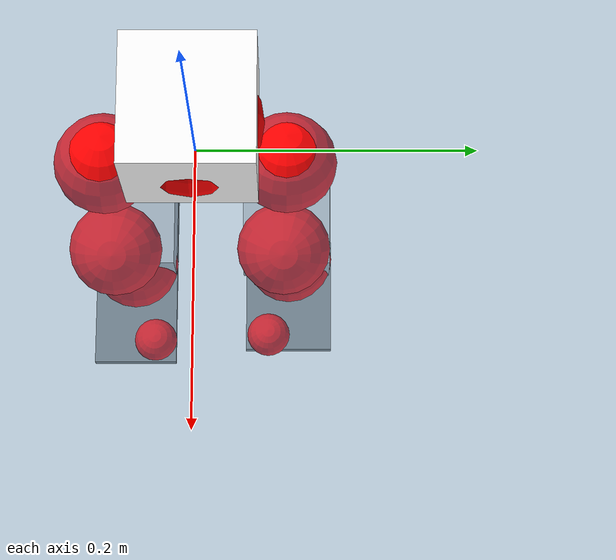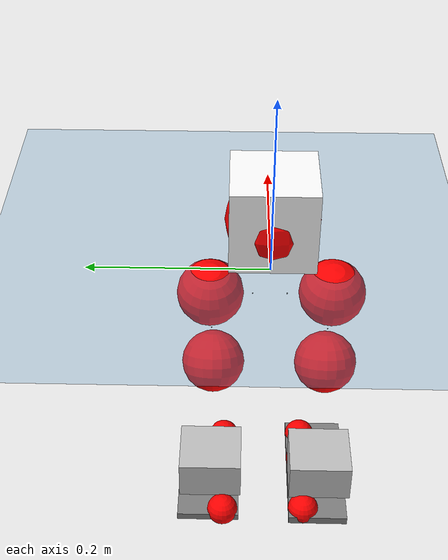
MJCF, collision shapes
<mujoco model="pi_12dof_release_v1">
  <compiler angle="radian" assetdir="assets" balanceinertia="true" inertiafromgeom="false"/>

  <option timestep="0.005" density="1.2" viscosity="2e-05"/>

  <size nkey="1"/>

  <visual>
    <quality shadowsize="8192"/>
    <map shadowclip="0.5"/>
  </visual>

  <default>
    <default class="/">
      <joint armature="0.01" damping="0.01" frictionloss="0.01"/>
      <geom contype="0" conaffinity="0" group="1" solref="-1000 -80"/>
      <site size="0.01 0.005 0.005" group="5"/>
      <general forcelimited="true" biastype="affine" gainprm="20" biasprm="0 -20 -0.5"/>
      <default class="foot">
        <geom size="0.0845 0.036 0.005" type="box" condim="6" group="4" priority="1" friction="0.9 0.2 0.2" solimp="0.015 1 0.005"/>
      </default>
      <default class="reward_collision_sphere">
        <geom group="5" rgba="1 0 0 1"/>
      </default>
    </default>
  </default>

  <asset>
    <texture type="skybox" colorspace="auto" name="//unnamed_texture_0" builtin="gradient" rgb1="0.95 0.95 0.95" rgb2="0.95 0.95 0.95" width="100" height="600"/>
    <texture type="2d" colorspace="auto" name="texplane" builtin="checker" rgb1="0.345 0.575 0.748" rgb2="0.345 0.575 0.748" markrgb="1 1 1" width="512" height="512"/>
    <material name="MatPlane" class="/" texture="texplane" texuniform="true" texrepeat="2 2" specular="0.9"/>
    <mesh name="baselink_1" class="/" file="baselink_1.STL"/>
    <mesh name="r_hip_pitch_link" class="/" file="r_hip_pitch_link.STL"/>
    <mesh name="r_hip_roll_link" class="/" file="r_hip_roll_link.STL"/>
    <mesh name="r_thigh_link" class="/" file="r_thigh_link.STL"/>
    <mesh name="r_calf_link" class="/" file="r_calf_link.STL"/>
    <mesh name="r_ankle_pitch_link" class="/" file="r_ankle_pitch_link.STL"/>
    <mesh name="r_ankle_roll_link" class="/" file="r_ankle_roll_link.STL"/>
    <mesh name="l_hip_pitch_link" class="/" file="l_hip_pitch_link.STL"/>
    <mesh name="l_hip_roll_link" class="/" file="l_hip_roll_link.STL"/>
    <mesh name="l_thigh_link" class="/" file="l_thigh_link.STL"/>
    <mesh name="l_calf_link" class="/" file="l_calf_link.STL"/>
    <mesh name="l_ankle_pitch_link" class="/" file="l_ankle_pitch_link.STL"/>
    <mesh name="l_ankle_roll_link" class="/" file="l_ankle_roll_link.STL"/>
  </asset>

  <worldbody>
    <geom name="floor" class="/" size="100 100 0.125" type="plane" group="0" material="MatPlane"/>
    <light name="toplight_shadow" class="/" pos="0 0 5" dir="0.0990148 0.0990148 -0.990148" type="directional" ambient="0.04 0.04 0.04" diffuse="0.55 0.55 0.55" specular="0.12 0.12 0.12"/>
    <light name="toplight_fill" class="/" pos="0 0 5" dir="0.0990148 0.0990148 -0.990148" type="directional" castshadow="false" ambient="0.04 0.04 0.04" diffuse="0.3 0.3 0.3" specular="0.08 0.08 0.08"/>
    <body name="trunk" pos="0.000543907 -0.000101728 -0.00037221" quat="1 -4.0974e-06 0.000122112 -0.000223297">
      <inertial pos="0.00123088 -0.00253561 0.036229" quat="0.692918 0.00823818 0.00593807 0.720945" mass="1.63811" diaginertia="0.00799083 0.00442915 0.00279356"/>
      <joint name="//unnamed_joint_0" type="free"/>
      <geom name="//unnamed_geom_1" class="/" type="mesh" density="0" rgba="1 1 1 1" mesh="baselink_1"/>
      <geom name="//unnamed_geom_2" class="/" size="0.045723 0.045723 0.045723" pos="0 0 0.0736732" type="box" rgba="1 1 1 1"/>
      <geom name="//unnamed_geom_3" class="reward_collision_sphere" size="0.0502953" pos="0 0 0.0644641"/>
      <site name="imu" class="/" pos="-0.0112871 -0.00168269 0.00802422" size="0.0091446"/>
      <camera name="track" class="/" pos="0 -1.72776 0" quat="0.707107 0.707107 0 0" mode="trackcom"/>
      <camera name="ego_camera" class="/" pos="0.0718938 0 0.165765" quat="-0.5 -0.5 0.5 0.5"/>
      <body name="r_hip_pitch_link" pos="-0.000945066 -0.018789 -0.0302823" quat="0.992193 -6.23292e-05 -0.124711 -2.47553e-06">
        <inertial pos="0.0027624 -0.0479589 -0.000100078" quat="-0.020087 0.70621 -0.0278147 0.707171" mass="0.276368" diaginertia="8.56711e-05 4.73303e-05 5.43136e-05"/>
        <joint name="r_hip_pitch_joint" class="/" pos="0 0 0" axis="-0.00709368 -0.999973 -0.00199151" stiffness="0.00762905" range="-1.74607 1.21044" armature="0.0095177" damping="0" frictionloss="0.00960823"/>
        <geom name="//unnamed_geom_4" class="/" type="mesh" density="0" rgba="0.75294 0.75294 0.75294 1" mesh="r_hip_pitch_link"/>
        <geom name="//unnamed_geom_5" class="/" size="0.00045723 0.00045723 0.00045723" type="box" rgba="0.75294 0.75294 0.75294 1"/>
        <body name="r_hip_roll_link" pos="0.0011934 -0.0489082 0.00114455" quat="1 -4.59148e-05 3.46757e-05 -0.000113313">
          <inertial pos="-0.00203843 -2.39441e-05 -0.0550402" quat="0.708463 -0.0796614 -0.0838039 0.696212" mass="0.298102" diaginertia="0.000265745 0.000134485 8.55247e-05"/>
          <joint name="r_hip_roll_joint" class="/" pos="0 0 0" axis="-0.999943 -0.00409151 0.00990088" stiffness="0.00126571" range="-0.154632 0.477785" armature="0.00962564" damping="0.0065624" frictionloss="0.00943768"/>
          <geom name="//unnamed_geom_6" class="/" type="mesh" density="0" rgba="0.75294 0.75294 0.75294 1" mesh="r_hip_roll_link"/>
          <geom name="//unnamed_geom_7" class="/" size="0.00045723 0.00045723 0.00045723" type="box" rgba="0.75294 0.75294 0.75294 1"/>
          <geom name="//unnamed_geom_8" class="reward_collision_sphere" size="0.0365784"/>
          <body name="r_thigh_link" pos="0.000556108 -0.000351757 -0.0656203" quat="1 -0.000205695 -0.000493955 -0.000267368">
            <inertial pos="0.000469504 0.000602711 -0.0431072" quat="0.738982 0.673722 -0.00184282 0.00145217" mass="0.0866468" diaginertia="0.000101743 4.53839e-05 3.8797e-05"/>
            <joint name="r_thigh_joint" class="/" pos="0 0 0" axis="0.00305045 -0.00119865 -0.999995" range="-0.321873 0.578457" armature="0.00893653" damping="0.00232596" frictionloss="0.00920346"/>
            <geom name="//unnamed_geom_9" class="/" type="mesh" density="0" rgba="0.75294 0.75294 0.75294 1" mesh="r_thigh_link"/>
            <geom name="//unnamed_geom_10" class="/" size="0.00045723 0.00045723 0.00045723" type="box" rgba="0.75294 0.75294 0.75294 1"/>
            <body name="r_calf_link" pos="-0.000880103 -0.00168639 -0.063623" quat="0.947669 8.44973e-05 0.319254 0.000104717">
              <inertial pos="0.00112874 -0.000806978 -0.0640962" quat="0.99999 -0.00179163 -0.000663715 0.00411226" mass="0.626506" diaginertia="0.00287957 0.00167374 0.000115256"/>
              <joint name="r_calf_joint" class="/" pos="0 0 0" axis="0.000291658 -0.999998 0.00201784" range="-1.66264 0.638198" armature="0.00905296" damping="0.00861313" frictionloss="0.0094847"/>
              <geom name="//unnamed_geom_11" class="/" type="mesh" density="0" rgba="0.75294 0.75294 0.75294 1" mesh="r_calf_link"/>
              <geom name="//unnamed_geom_12" class="/" size="0.00045723 0.00045723 0.00045723" type="box" rgba="0.75294 0.75294 0.75294 1"/>
              <geom name="//unnamed_geom_13" class="reward_collision_sphere" size="0.0365784"/>
              <body name="r_ankle_pitch_link" pos="0.000774818 0.00291761 -0.128788" quat="0.980063 -7.68623e-07 -0.198687 1.50513e-05">
                <inertial pos="0.00455393 0.00325043 -0.000884316" quat="0.00608481 0.711513 -0.00214581 0.702643" mass="0.129831" diaginertia="0.000248106 0.000105586 7.77059e-05"/>
                <joint name="r_ankle_pitch_joint" class="/" pos="0 0 0" axis="-0.00491057 -0.999983 -0.00311139" range="-1.28403 0.496184" armature="0.00921042" damping="0" frictionloss="0.0091788"/>
                <geom name="//unnamed_geom_14" class="/" type="mesh" density="0" rgba="0.75294 0.75294 0.75294 1" mesh="r_ankle_pitch_link"/>
                <geom name="//unnamed_geom_15" class="/" size="0.0356639 0.0365784 0.0228615" type="box" rgba="0.75294 0.75294 0.75294 1"/>
                <body name="r_ankle_roll_link" pos="0.0751355 0.00141537 -0.000546508" quat="1 0.000100885 1.85659e-05 -3.95526e-05">
                  <inertial pos="-0.0231254 0.000278418 -0.0115766" quat="0.558731 0.430417 0.435081 0.559701" mass="0.396117" diaginertia="0.000892124 0.000490252 0.000188614"/>
                  <joint name="r_ankle_roll_joint" class="/" pos="0 0 0" axis="-0.999994 0.00259129 -0.00220047" range="-0.156776 0.13061" armature="0.00857221" damping="0" frictionloss="0.00980955"/>
                  <geom name="//unnamed_geom_16" class="/" type="mesh" density="0" rgba="0.75294 0.75294 0.75294 1" mesh="r_ankle_roll_link"/>
                  <geom name="//unnamed_geom_17" class="/" type="mesh" rgba="0.75294 0.75294 0.75294 1" mesh="r_ankle_roll_link"/>
                  <geom name="right_foot" class="foot" size="0.0825783 0.0348355 0.00466775" pos="-0.0488878 0 -0.0405203"/>
                  <geom name="//unnamed_geom_19" class="reward_collision_sphere" size="0.0365784" pos="-0.0479292 0 -0.0184183"/>
                  <geom name="//unnamed_geom_20" class="reward_collision_sphere" size="0.0182892" pos="0.0143788 0.0172776 -0.0368366"/>
                  <geom name="//unnamed_geom_21" class="reward_collision_sphere" size="0.0182892" pos="-0.11503 0.0172776 -0.0368366"/>
                  <site name="right_foot" class="foot" pos="-0.0488878 0 -0.0405203" size="0.0091446"/>
                </body>
              </body>
            </body>
          </body>
        </body>
      </body>
      <body name="l_hip_pitch_link" pos="-0.00195732 0.0189817 -0.030088" quat="0.992227 -0.000107773 -0.124443 7.87449e-05">
        <inertial pos="6.26421e-07 0.048033 -7.82812e-05" quat="-0.0391498 0.705472 0.0301193 0.707015" mass="0.295483" diaginertia="0.000103362 5.10247e-05 6.42397e-05"/>
        <joint name="l_hip_pitch_joint" class="/" pos="0 0 0" axis="-0.000535567 1 0.000124843" stiffness="0.0023846" range="-1.28037 1.74561" armature="0.0100951" damping="0.000904038" frictionloss="0.00916966"/>
        <geom name="//unnamed_geom_22" class="/" type="mesh" density="0" rgba="0.75294 0.75294 0.75294 1" mesh="l_hip_pitch_link"/>
        <geom name="//unnamed_geom_23" class="/" size="0.00045723 0.00045723 0.00045723" type="box" rgba="0.75294 0.75294 0.75294 1"/>
        <body name="l_hip_roll_link" pos="0.000708127 0.0460805 5.0043e-06" quat="1 -0.000107829 -0.000141931 7.37825e-05">
          <inertial pos="-0.000924139 0.000983847 -0.0562089" quat="0.697703 -0.0746357 -0.0769861 0.708317" mass="0.296709" diaginertia="0.000269806 0.000133735 8.40674e-05"/>
          <joint name="l_hip_roll_joint" class="/" pos="0 0 0" axis="-0.999925 0.00810003 -0.00922124" range="-0.456015 0.114618" armature="0.00921281" damping="0.0102625" frictionloss="0.00841122"/>
          <geom name="//unnamed_geom_24" class="/" type="mesh" density="0" rgba="0.75294 0.75294 0.75294 1" mesh="l_hip_roll_link"/>
          <geom name="//unnamed_geom_25" class="/" size="0.00045723 0.00045723 0.00045723" type="box" rgba="0.75294 0.75294 0.75294 1"/>
          <geom name="//unnamed_geom_26" class="reward_collision_sphere" size="0.0365784"/>
          <body name="l_thigh_link" pos="0.000328363 -0.0012071 -0.0637044" quat="1 -0.000338033 0.000351262 -0.000162337">
            <inertial pos="0.000516071 -0.00126601 -0.0445822" quat="0.67399 0.738645 0.0116247 -0.00237589" mass="0.0862414" diaginertia="0.000101674 4.57988e-05 3.72663e-05"/>
            <joint name="l_thigh_joint" class="/" pos="0 0 0" axis="-0.00610033 2.08436e-05 -0.999981" range="-0.597734 0.292866" armature="0.0088143" damping="0" frictionloss="0.00912958"/>
            <geom name="//unnamed_geom_27" class="/" type="mesh" density="0" rgba="0.75294 0.75294 0.75294 1" mesh="l_thigh_link"/>
            <geom name="//unnamed_geom_28" class="/" size="0.00045723 0.00045723 0.00045723" type="box" rgba="0.75294 0.75294 0.75294 1"/>
            <body name="l_calf_link" pos="3.41417e-05 -0.00131182 -0.0648099" quat="0.947813 1.72518e-05 0.318827 -0.000149369">
              <inertial pos="-0.00161567 0.00304921 -0.0634919" quat="0.999987 0.00377206 -0.00278534 0.00193634" mass="0.628233" diaginertia="0.0028733 0.00169633 0.00011353"/>
              <joint name="l_calf_joint" class="/" pos="0 0 0" axis="-0.00333556 0.999992 -0.00198645" stiffness="6.58841e-05" range="-0.669987 1.60464" armature="0.00845519" damping="0.00580684" frictionloss="0.00838815"/>
              <geom name="//unnamed_geom_29" class="/" type="mesh" density="0" rgba="0.75294 0.75294 0.75294 1" mesh="l_calf_link"/>
              <geom name="//unnamed_geom_30" class="/" size="0.00045723 0.00045723 0.00045723" type="box" rgba="0.75294 0.75294 0.75294 1"/>
              <geom name="//unnamed_geom_31" class="reward_collision_sphere" size="0.0365784"/>
              <body name="l_ankle_pitch_link" pos="0.00121641 0.00200308 -0.127119" quat="0.98009 -0.000106535 -0.198555 -6.88205e-05">
                <inertial pos="0.00530809 -8.79228e-05 0.000103383" quat="-0.00226203 0.707209 0.0022824 0.706997" mass="0.127048" diaginertia="0.000237417 0.00010354 7.66426e-05"/>
                <joint name="l_ankle_pitch_joint" class="/" pos="0 0 0" axis="-0.00210193 0.999994 0.00290249" range="-0.499434 1.29451" armature="0.00919642" damping="0" frictionloss="0.0102507"/>
                <geom name="//unnamed_geom_32" class="/" type="mesh" density="0" rgba="0.75294 0.75294 0.75294 1" mesh="l_ankle_pitch_link"/>
                <geom name="//unnamed_geom_33" class="/" size="0.0356639 0.0365784 0.0228615" type="box" rgba="0.75294 0.75294 0.75294 1"/>
                <body name="l_ankle_roll_link" pos="0.0705011 0.00200556 -0.000374746" quat="1 0.000250156 0.000262991 -9.06308e-05">
                  <inertial pos="-0.022526 -0.000222061 -0.013321" quat="0.558223 0.42862 0.440087 0.557669" mass="0.401549" diaginertia="0.000926688 0.000506993 0.000188952"/>
                  <joint name="l_ankle_roll_joint" class="/" pos="0 0 0" axis="-0.999995 -0.00300312 0.000603999" stiffness="0.000340194" range="-0.155616 0.153552" armature="0.00958374" damping="0.00951678" frictionloss="0.0081788"/>
                  <geom name="//unnamed_geom_34" class="/" type="mesh" density="0" rgba="0.75294 0.75294 0.75294 1" mesh="l_ankle_roll_link"/>
                  <geom name="//unnamed_geom_35" class="/" type="mesh" rgba="0.75294 0.75294 0.75294 1" mesh="l_ankle_roll_link"/>
                  <geom name="left_foot" class="foot" size="0.0762193 0.036489 0.0041831" pos="-0.0488878 0 -0.0405203"/>
                  <geom name="//unnamed_geom_37" class="reward_collision_sphere" size="0.0365784" pos="-0.0479292 0 -0.0184183"/>
                  <geom name="//unnamed_geom_38" class="reward_collision_sphere" size="0.0182892" pos="0.0143788 -0.0172776 -0.0368366"/>
                  <geom name="//unnamed_geom_39" class="reward_collision_sphere" size="0.0182892" pos="-0.11503 -0.0172776 -0.0368366"/>
                  <site name="left_foot" class="foot" pos="-0.0488878 0 -0.0405203" size="0.0091446"/>
                </body>
              </body>
            </body>
          </body>
        </body>
      </body>
    </body>
  </worldbody>

  <contact>
    <pair class="/" geom1="floor" geom2="right_foot" name="//unnamed_contact_1"/>
    <pair class="/" geom1="floor" geom2="left_foot" name="//unnamed_contact_0"/>
  </contact>

  <actuator>
    <general name="r_hip_pitch_joint" class="/" joint="r_hip_pitch_joint" forcerange="-18.4915 18.4915" gainprm="18.2204" biasprm="0 -18.2204 -0.480266"/>
    <general name="r_hip_roll_joint" class="/" joint="r_hip_roll_joint" forcerange="-18.3017 18.3017" gainprm="18.2204" biasprm="0 -18.2204 -0.480266"/>
    <general name="r_thigh_joint" class="/" joint="r_thigh_joint" forcerange="-19.8042 19.8042" gainprm="18.2204" biasprm="0 -18.2204 -0.480266"/>
    <general name="r_calf_joint" class="/" joint="r_calf_joint" forcerange="-19.378 19.378" gainprm="18.2204" biasprm="0 -18.2204 -0.480266"/>
    <general name="r_ankle_pitch_joint" class="/" joint="r_ankle_pitch_joint" forcerange="-18.3047 18.3047" gainprm="18.2204" biasprm="0 -18.2204 -0.480266"/>
    <general name="r_ankle_roll_joint" class="/" joint="r_ankle_roll_joint" forcerange="-19.1848 19.1848" gainprm="18.2204" biasprm="0 -18.2204 -0.480266"/>
    <general name="l_hip_pitch_joint" class="/" joint="l_hip_pitch_joint" forcerange="-19.0467 19.0467" gainprm="18.2204" biasprm="0 -18.2204 -0.480266"/>
    <general name="l_hip_roll_joint" class="/" joint="l_hip_roll_joint" forcerange="-19.505 19.505" gainprm="18.2204" biasprm="0 -18.2204 -0.480266"/>
    <general name="l_thigh_joint" class="/" joint="l_thigh_joint" forcerange="-19.6399 19.6399" gainprm="18.2204" biasprm="0 -18.2204 -0.480266"/>
    <general name="l_calf_joint" class="/" joint="l_calf_joint" forcerange="-19.274 19.274" gainprm="18.2204" biasprm="0 -18.2204 -0.480266"/>
    <general name="l_ankle_pitch_joint" class="/" joint="l_ankle_pitch_joint" forcerange="-18.5553 18.5553" gainprm="18.2204" biasprm="0 -18.2204 -0.480266"/>
    <general name="l_ankle_roll_joint" class="/" joint="l_ankle_roll_joint" forcerange="-18.0803 18.0803" gainprm="18.2204" biasprm="0 -18.2204 -0.480266"/>
  </actuator>

  <sensor>
    <gyro site="imu" name="imu_angular_velocity"/>
    <velocimeter site="imu" name="imu_linear_velocity"/>
    <framelinvel objtype="site" objname="left_foot" name="left_foot_global_linear_velocity"/>
    <framelinvel objtype="site" objname="right_foot" name="right_foot_global_linear_velocity"/>
  </sensor>

  <keyframe>
    <key name="home" qpos="0 0 0.291 1 0 0 0 0.4 0 0 -0.8 0.4 0 -0.4 0 0 0.8 -0.4 0"/>
  </keyframe>
</mujoco>
